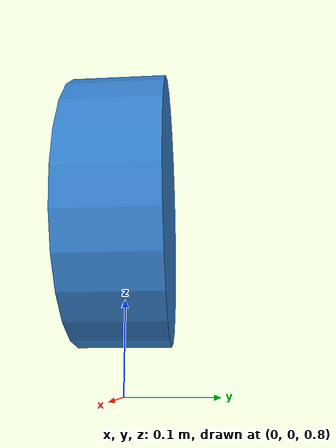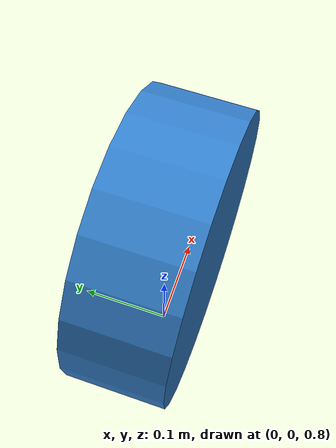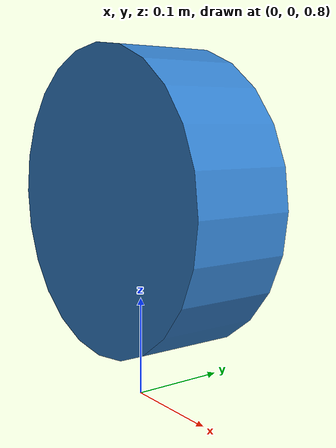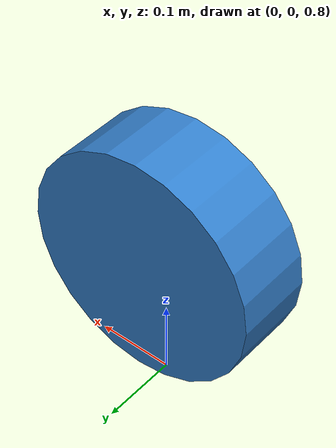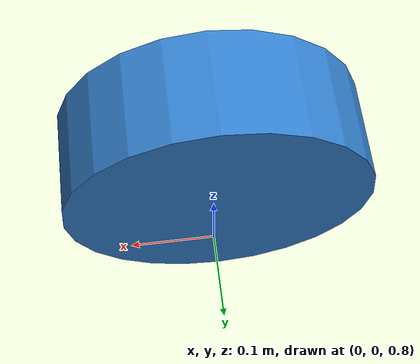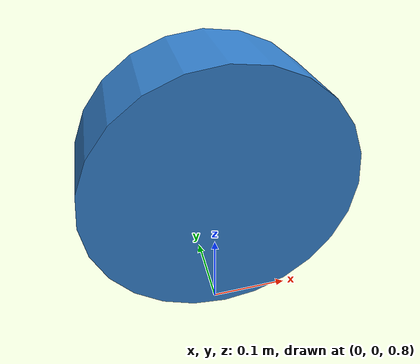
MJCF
<mujoco model="unicycle">
  <compiler angle="radian"/>
  <option timestep="0.005" gravity="0 0 -9.81"/>

  <visual>
    <global offwidth="960" offheight="540"/>
  </visual>

  <asset>
    <material name="blue" rgba="0.2 0.5 0.8 1"/>
    <material name="red" rgba="1 0.3 0.3 1"/>
  </asset>

  <worldbody>
    <light pos="0 0 5" dir="0 0 -1" directional="true"/>
    <geom name="floor" type="plane" size="5 5 0.1" rgba="0.8 0.9 0.8 1"/>

    <body name="unicycle" pos="0 0 1">
      <freejoint name="root"/>
      <!-- Rotate the cylinder 90 deg (pi/2) around X so it acts like an upright rolling wheel -->
      <geom name="wheel" type="cylinder" size="0.15 0.05" euler="1.57079632679 0 0" material="blue"/>
    </body>
  </worldbody>
</mujoco>
